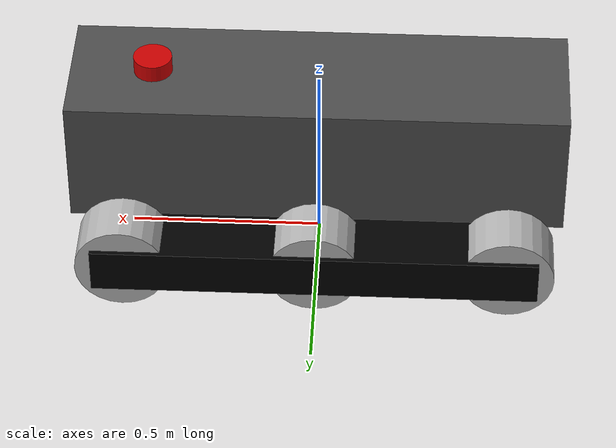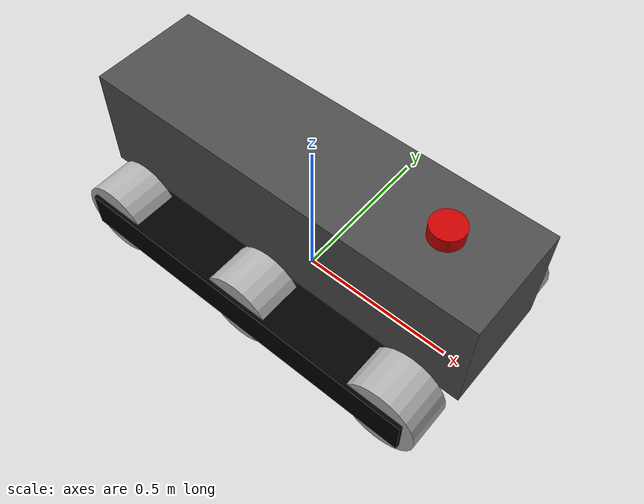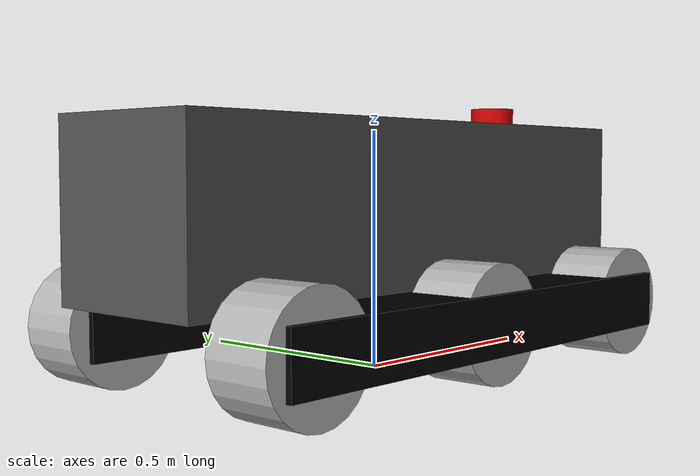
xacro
<?xml version="1.0"?>
<robot xmlns:xacro="http://www.ros.org/wiki/xacro" name="tracked_vehicle">

  <xacro:include filename="inertial_macros.xacro" />

  <!-- Materials -->
  <material name="black">
    <color rgba="0.0 0.0 0.0 1.0"/>
  </material>
  <material name="dark_grey">
    <color rgba="0.3 0.3 0.3 1.0"/>
  </material>
  <material name="light_grey">
    <color rgba="0.7 0.7 0.7 1.0"/>
  </material>
  <material name="red">
    <color rgba="0.8 0.0 0.0 1.0"/>
  </material>

  <!-- Base Link -->
  <link name="base_link">
  </link>

  <!-- Chassis Link (Main Body) -->
  <joint name="chassis_joint" type="fixed">
    <parent link="base_link"/>
    <child link="chassis"/>
    <origin xyz="0 0 0.345"/>
  </joint>

  <link name="chassis">
    <visual>
      <origin xyz="0 0 0"/>
      <geometry>
        <box size="1.285 0.355 0.345"/>
      </geometry>
      <material name="dark_grey"/>
    </visual>
    <collision>
      <origin xyz="0 0 0"/>
      <geometry>
        <box size="1.285 0.355 0.345"/>
      </geometry>
    </collision>
    <xacro:inertial_box mass="65.0" x="1.285" y="0.355" z="0.345">
      <origin xyz="0 0 0" rpy="0 0 0"/>
    </xacro:inertial_box>
  </link>

  <!-- Right Track -->
  <joint name="right_track_joint" type="fixed">
    <parent link="base_link"/>
    <child link="right_track"/>
    <origin xyz="0 -0.26 0.12074999999999998"/>
  </joint>

  <link name="right_track">
    <visual>
      <geometry>
        <box size="1.1564999999999999 0.165 0.12074999999999998"/>
      </geometry>
      <material name="black"/>
    </visual>
    <xacro:inertial_box mass="3.0" x="1.1564999999999999" y="0.165" z="0.12074999999999998">
      <origin xyz="0 0 0" rpy="0 0 0"/>
    </xacro:inertial_box>
  </link>

  <!-- Left Track -->
  <joint name="left_track_joint" type="fixed">
    <parent link="base_link"/>
    <child link="left_track"/>
    <origin xyz="0 0.26 0.12074999999999998"/>
  </joint>

  <link name="left_track">
    <visual>
      <geometry>
        <box size="1.1564999999999999 0.165 0.12074999999999998"/>
      </geometry>
      <material name="black"/>
    </visual>
    <xacro:inertial_box mass="3.0" x="1.1564999999999999" y="0.165" z="0.12074999999999998">
      <origin xyz="0 0 0" rpy="0 0 0"/>
    </xacro:inertial_box>
  </link>

  <!-- Front Right Wheel -->
  <joint name="front_right_wheel_joint" type="continuous">
    <parent link="base_link"/>
    <child link="front_right_wheel"/>
    <origin xyz="0.5 -0.26 0.12" rpy="${pi/2} 0 0"/>
    <axis xyz="0 0 -1"/>
  </joint>

  <link name="front_right_wheel">
    <visual>
      <geometry>
        <cylinder radius="0.12" length="0.14"/>
      </geometry>
      <material name="light_grey"/>
    </visual>
    <collision>
      <geometry>
        <cylinder radius="0.12" length="0.14"/>
      </geometry>
      <surface>
        <friction>
          <ode>
            <mu>30</mu>
            <mu2>20</mu2>
          </ode>
        </friction>
      </surface>
    </collision>
    <xacro:inertial_cylinder mass="4.0" length="0.14" radius="0.12">
      <origin xyz="0 0 0" rpy="0 0 0"/>
    </xacro:inertial_cylinder>
  </link>

  <!-- Front Left Wheel -->
  <joint name="front_left_wheel_joint" type="continuous">
    <parent link="base_link"/>
    <child link="front_left_wheel"/>
    <origin xyz="0.5 0.26 0.12" rpy="-${pi/2} 0 0"/>
    <axis xyz="0 0 1"/>
  </joint>

  <link name="front_left_wheel">
    <visual>
      <geometry>
        <cylinder radius="0.12" length="0.14"/>
      </geometry>
      <material name="light_grey"/>
    </visual>
    <collision>
      <geometry>
        <cylinder radius="0.12" length="0.14"/>
      </geometry>
      <surface>
        <friction>
          <ode>
            <mu>30</mu>
            <mu2>20</mu2>
          </ode>
        </friction>
      </surface>
    </collision>
    <xacro:inertial_cylinder mass="4.0" length="0.14" radius="0.12">
      <origin xyz="0 0 0" rpy="0 0 0"/>
    </xacro:inertial_cylinder>
  </link>

  <!-- Center Right Wheel -->
  <joint name="center_right_wheel_joint" type="continuous">
    <parent link="base_link"/>
    <child link="center_right_wheel"/>
    <origin xyz="0.0 -0.26 0.12" rpy="${pi/2} 0 0"/>
    <axis xyz="0 0 -1"/>
  </joint>

  <link name="center_right_wheel">
    <visual>
      <geometry>
        <cylinder radius="0.12" length="0.14"/>
      </geometry>
      <material name="light_grey"/>
    </visual>
    <collision>
      <geometry>
        <cylinder radius="0.12" length="0.14"/>
      </geometry>
      <surface>
        <friction>
          <ode>
            <mu>30</mu>
            <mu2>20</mu2>
          </ode>
        </friction>
      </surface>
    </collision>
    <xacro:inertial_cylinder mass="3.0" length="0.14" radius="0.12">
      <origin xyz="0 0 0" rpy="0 0 0"/>
    </xacro:inertial_cylinder>
  </link>

  <!-- Center Left Wheel -->
  <joint name="center_left_wheel_joint" type="continuous">
    <parent link="base_link"/>
    <child link="center_left_wheel"/>
    <origin xyz="0.0 0.26 0.12" rpy="-${pi/2} 0 0"/>
    <axis xyz="0 0 1"/>
  </joint>

  <link name="center_left_wheel">
    <visual>
      <geometry>
        <cylinder radius="0.12" length="0.14"/>
      </geometry>
      <material name="light_grey"/>
    </visual>
    <collision>
      <geometry>
        <cylinder radius="0.12" length="0.14"/>
      </geometry>
      <surface>
        <friction>
          <ode>
            <mu>30</mu>
            <mu2>20</mu2>
          </ode>
        </friction>
      </surface>
    </collision>
    <xacro:inertial_cylinder mass="3.0" length="0.14" radius="0.12">
      <origin xyz="0 0 0" rpy="0 0 0"/>
    </xacro:inertial_cylinder>
  </link>

  <!-- Rear Right Wheel -->
  <joint name="rear_right_wheel_joint" type="continuous">
    <parent link="base_link"/>
    <child link="rear_right_wheel"/>
    <origin xyz="-0.5 -0.26 0.12" rpy="${pi/2} 0 0"/>
    <axis xyz="0 0 -1"/>
  </joint>

  <link name="rear_right_wheel">
    <visual>
      <geometry>
        <cylinder radius="0.12" length="0.14"/>
      </geometry>
      <material name="light_grey"/>
    </visual>
    <collision>
      <geometry>
        <cylinder radius="0.12" length="0.14"/>
      </geometry>
      <surface>
        <friction>
          <ode>
            <mu>30</mu>
            <mu2>20</mu2>
          </ode>
        </friction>
      </surface>
    </collision>
    <xacro:inertial_cylinder mass="4.0" length="0.14" radius="0.12">
      <origin xyz="0 0 0" rpy="0 0 0"/>
    </xacro:inertial_cylinder>
  </link>

  <!-- Rear Left Wheel -->
  <joint name="rear_left_wheel_joint" type="continuous">
    <parent link="base_link"/>
    <child link="rear_left_wheel"/>
    <origin xyz="-0.5 0.26 0.12" rpy="-${pi/2} 0 0"/>
    <axis xyz="0 0 1"/>
  </joint>

  <link name="rear_left_wheel">
    <visual>
      <geometry>
        <cylinder radius="0.12" length="0.14"/>
      </geometry>
      <material name="light_grey"/>
    </visual>
    <collision>
      <geometry>
        <cylinder radius="0.12" length="0.14"/>
      </geometry>
      <surface>
        <friction>
          <ode>
            <mu>30</mu>
            <mu2>20</mu2>
          </ode>
        </friction>
      </surface>
    </collision>
    <xacro:inertial_cylinder mass="4.0" length="0.14" radius="0.12">
      <origin xyz="0 0 0" rpy="0 0 0"/>
    </xacro:inertial_cylinder>
  </link>

  <!-- Velodyne Lidar -->
  <joint name="velodyne_joint" type="fixed">
    <parent link="chassis"/>
    <child link="velodyne"/>
    <origin xyz="0.4283333333333333 0 0.1925"/>
  </joint>

  <link name="velodyne">
    <visual>
      <geometry>
        <cylinder length="0.05" radius="0.05"/>
      </geometry>
      <material name="red"/>
    </visual>
    <collision>
      <origin xyz="0.015 0 -0.0065"/>
      <geometry>
        <cylinder length="0.0315" radius="0.055"/>
      </geometry>
    </collision>
    <xacro:inertial_cylinder mass="5.0" length="0.05" radius="0.05">
      <origin xyz="0 0 0" rpy="0 0 0"/>
    </xacro:inertial_cylinder>
  </link>

  <!-- IMU -->
  <joint name="imu_joint" type="fixed">
    <parent link="chassis"/>
    <child link="imu_link"/>
    <origin xyz="0.4283333333333333 0 0.1925"/>
  </joint>

  <link name="imu_link"/>

  <!-- Gazebo Parameters for Friction -->
  <gazebo reference="chassis">
    <mu1>2.0</mu1>
    <mu2>2.0</mu2>
  </gazebo>

  <gazebo reference="front_right_wheel">
    <mu1>2.0</mu1>
    <mu2>2.0</mu2>
  </gazebo>

  <gazebo reference="front_left_wheel">
    <mu1>2.0</mu1>
    <mu2>2.0</mu2>
  </gazebo>

  <gazebo reference="center_right_wheel">
    <mu1>15.0</mu1>
    <mu2>15.0</mu2>
  </gazebo>

  <gazebo reference="center_left_wheel">
    <mu1>15.0</mu1>
    <mu2>15.0</mu2>
  </gazebo>

  <gazebo reference="rear_right_wheel">
    <mu1>2.0</mu1>
    <mu2>2.0</mu2>
  </gazebo>

  <gazebo reference="rear_left_wheel">
    <mu1>2.0</mu1>
    <mu2>2.0</mu2>
  </gazebo>

  <gazebo reference="right_track">
    <mu1>0.00001</mu1>
    <mu2>0.00001</mu2>
  </gazebo>

  <gazebo reference="left_track">
    <mu1>0.00001</mu1>
    <mu2>0.00001</mu2>
  </gazebo>

  <!-- IMU Sensor -->
  <gazebo reference="imu_link">
    <sensor name="tb3_imu" type="imu">
      <always_on>true</always_on>
      <update_rate>200</update_rate>
      <imu>
        <angular_velocity>
          <x>
            <noise type="gaussian">
              <mean>0.0</mean>
              <stddev>2e-4</stddev>
            </noise>
          </x>
          <y>
            <noise type="gaussian">
              <mean>0.0</mean>
              <stddev>2e-4</stddev>
            </noise>
          </y>
          <z>
            <noise type="gaussian">
              <mean>0.0</mean>
              <stddev>2e-4</stddev>
            </noise>
          </z>
        </angular_velocity>
        <linear_acceleration>
          <x>
            <noise type="gaussian">
              <mean>0.0</mean>
              <stddev>1.7e-2</stddev>
            </noise>
          </x>
          <y>
            <noise type="gaussian">
              <mean>0.0</mean>
              <stddev>1.7e-2</stddev>
            </noise>
          </y>
          <z>
            <noise type="gaussian">
              <mean>0.0</mean>
              <stddev>1.7e-2</stddev>
            </noise>
          </z>
        </linear_acceleration>
      </imu>
    </sensor>
  </gazebo>

  <!-- Velodyne Lidar -->
  <gazebo reference="velodyne">
    <sensor name="velodyne" type="gpu_lidar">
      <update_rate>10</update_rate>
      <visualize>true</visualize>
      <always_on>true</always_on>
      <gz_frame_id>velodyne</gz_frame_id>
      <topic>velodyne</topic>
      <lidar>
        <scan>
          <horizontal>
            <samples>512</samples>
            <resolution>1</resolution>
            <min_angle>-3.14159265359</min_angle>
            <max_angle>3.14159265359</max_angle>
          </horizontal>
          <vertical>
            <samples>32</samples>
            <resolution>1</resolution>
            <min_angle>-0.55</min_angle>
            <max_angle>0.26</max_angle>
          </vertical>
        </scan>
        <range>
          <min>0.2</min>
          <max>131.0</max>
          <resolution>0.01</resolution>
        </range>
      </lidar>
    </sensor>
  </gazebo>

  <!-- Differential Drive Plugin -->
  <gazebo>
    <plugin filename="gz-sim-diff-drive-system" name="gz::sim::systems::DiffDrive">
      <left_joint>front_left_wheel_joint</left_joint>
      <left_joint>center_left_wheel_joint</left_joint>
      <left_joint>rear_left_wheel_joint</left_joint>
      <right_joint>front_right_wheel_joint</right_joint>
      <right_joint>center_right_wheel_joint</right_joint>
      <right_joint>rear_right_wheel_joint</right_joint>
      <wheel_separation>0.52</wheel_separation>
      <wheel_radius>0.12</wheel_radius>
      <topic>cmd_vel</topic>
      <odom_topic>odom</odom_topic>
      <frame_id>odom</frame_id>
      <tf_topic>/tf</tf_topic>
      <child_frame_id>base_link</child_frame_id>
      <odom_publisher_frequency>100</odom_publisher_frequency>
    </plugin>
  </gazebo>

  <!-- Joint State Publisher -->
  <gazebo>
    <plugin filename="gz-sim-joint-state-publisher-system" name="gz::sim::systems::JointStatePublisher">
      <topic>joint_states</topic>
      <update_rate>30</update_rate>
      <joint_name>front_left_wheel_joint</joint_name>
      <joint_name>front_right_wheel_joint</joint_name>
      <joint_name>center_left_wheel_joint</joint_name>
      <joint_name>center_right_wheel_joint</joint_name>
      <joint_name>rear_left_wheel_joint</joint_name>
      <joint_name>rear_right_wheel_joint</joint_name>
    </plugin>
  </gazebo>

</robot>
